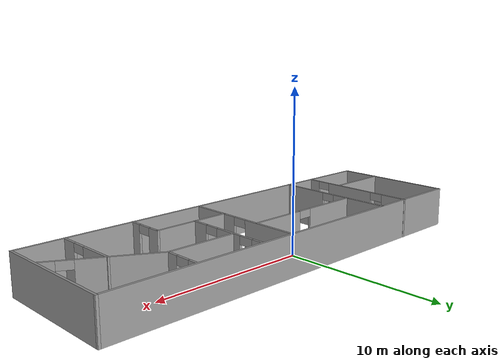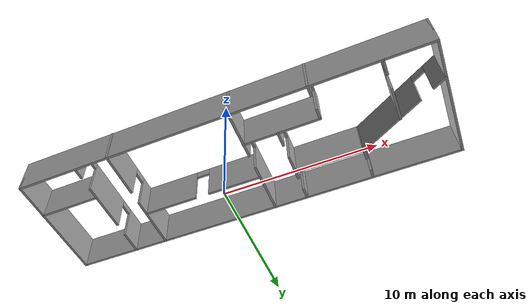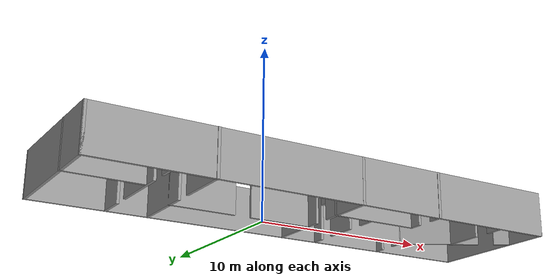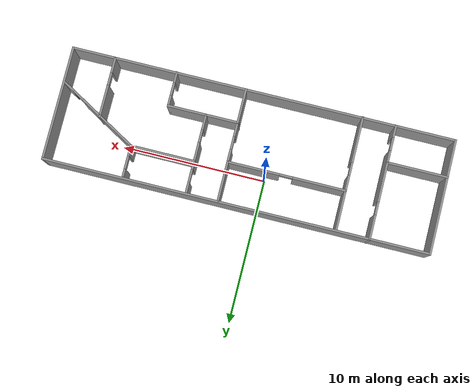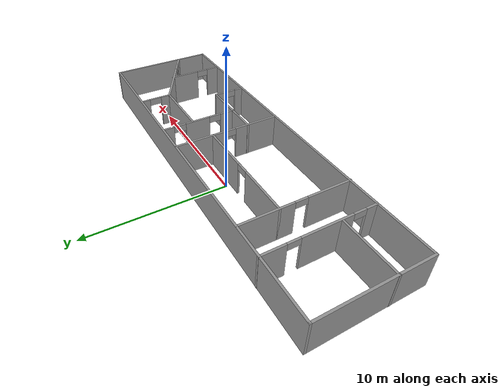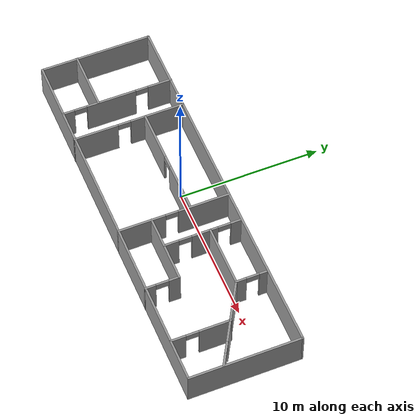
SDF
<?xml version='1.0'?>
<sdf version='1.6'>
  <model name='playground'>
    <pose frame=''>1.41143 -1.55808 0 0 -0 0</pose>
    <link name='Wall_10'>
      <collision name='Wall_10_Collision'>
        <geometry>
          <box>
            <size>26.75 0.15 2.5</size>
          </box>
        </geometry>
        <pose frame=''>0 0 1.25 0 -0 0</pose>
      </collision>
      <visual name='Wall_10_Visual'>
        <pose frame=''>0 0 1.25 0 -0 0</pose>
        <geometry>
          <box>
            <size>26.75 0.15 2.5</size>
          </box>
        </geometry>
        <material>
          <script>
            <uri>file://media/materials/scripts/gazebo.material</uri>
            <name>Gazebo/Grey</name>
          </script>
          <ambient>1 1 1 1</ambient>
        </material>
      </visual>
      <pose frame=''>0.007886 -3.91706 0 0 -0 0</pose>
    </link>
    <link name='Wall_11'>
      <collision name='Wall_11_Collision'>
        <geometry>
          <box>
            <size>8 0.15 2.5</size>
          </box>
        </geometry>
        <pose frame=''>0 0 1.25 0 -0 0</pose>
      </collision>
      <visual name='Wall_11_Visual'>
        <pose frame=''>0 0 1.25 0 -0 0</pose>
        <geometry>
          <box>
            <size>8 0.15 2.5</size>
          </box>
        </geometry>
        <material>
          <script>
            <uri>file://media/materials/scripts/gazebo.material</uri>
            <name>Gazebo/Grey</name>
          </script>
          <ambient>1 1 1 1</ambient>
        </material>
      </visual>
      <pose frame=''>13.3079 0.007941 0 0 -0 1.5708</pose>
    </link>
    <link name='Wall_12'>
      <collision name='Wall_12_Collision'>
        <geometry>
          <box>
            <size>26.75 0.15 2.5</size>
          </box>
        </geometry>
        <pose frame=''>0 0 1.25 0 -0 0</pose>
      </collision>
      <visual name='Wall_12_Visual'>
        <pose frame=''>0 0 1.25 0 -0 0</pose>
        <geometry>
          <box>
            <size>26.75 0.15 2.5</size>
          </box>
        </geometry>
        <material>
          <script>
            <uri>file://media/materials/scripts/gazebo.material</uri>
            <name>Gazebo/Grey</name>
          </script>
          <ambient>1 1 1 1</ambient>
        </material>
      </visual>
      <pose frame=''>0.007886 3.93294 0 0 -0 3.14159</pose>
    </link>
    <link name='Wall_21'>
      <pose frame=''>-9.18476 0.019386 0 0 0 -1.5708</pose>
      <visual name='Wall_21_Visual_0'>
        <pose frame=''>-3.12221 0 1.25 0 -0 0</pose>
        <geometry>
          <box>
            <size>1.75558 0.15 2.5</size>
          </box>
        </geometry>
        <material>
          <script>
            <uri>file://media/materials/scripts/gazebo.material</uri>
            <name>Gazebo/Grey</name>
          </script>
          <ambient>1 1 1 1</ambient>
        </material>
      </visual>
      <collision name='Wall_21_Collision_0'>
        <geometry>
          <box>
            <size>1.75558 0.15 2.5</size>
          </box>
        </geometry>
        <pose frame=''>-3.12221 0 1.25 0 -0 0</pose>
      </collision>
      <visual name='Wall_21_Visual_1'>
        <pose frame=''>0.438191 0 1.25 0 -0 0</pose>
        <geometry>
          <box>
            <size>3.56521 0.15 2.5</size>
          </box>
        </geometry>
        <material>
          <script>
            <uri>file://media/materials/scripts/gazebo.material</uri>
            <name>Gazebo/Grey</name>
          </script>
          <ambient>1 1 1 1</ambient>
        </material>
      </visual>
      <collision name='Wall_21_Collision_1'>
        <geometry>
          <box>
            <size>3.56521 0.15 2.5</size>
          </box>
        </geometry>
        <pose frame=''>0.438191 0 1.25 0 -0 0</pose>
      </collision>
      <visual name='Wall_21_Visual_2'>
        <pose frame=''>3.5604 0 1.25 0 -0 0</pose>
        <geometry>
          <box>
            <size>0.879203 0.15 2.5</size>
          </box>
        </geometry>
        <material>
          <script>
            <uri>file://media/materials/scripts/gazebo.material</uri>
            <name>Gazebo/Grey</name>
          </script>
          <ambient>1 1 1 1</ambient>
        </material>
      </visual>
      <collision name='Wall_21_Collision_2'>
        <geometry>
          <box>
            <size>0.879203 0.15 2.5</size>
          </box>
        </geometry>
        <pose frame=''>3.5604 0 1.25 0 -0 0</pose>
      </collision>
      <visual name='Wall_21_Visual_3'>
        <pose frame=''>-1.79442 0 2.25 0 -0 0</pose>
        <geometry>
          <box>
            <size>0.9 0.15 0.5</size>
          </box>
        </geometry>
        <material>
          <script>
            <uri>file://media/materials/scripts/gazebo.material</uri>
            <name>Gazebo/Grey</name>
          </script>
          <ambient>1 1 1 1</ambient>
        </material>
      </visual>
      <collision name='Wall_21_Collision_3'>
        <geometry>
          <box>
            <size>0.9 0.15 0.5</size>
          </box>
        </geometry>
        <pose frame=''>-1.79442 0 2.25 0 -0 0</pose>
      </collision>
      <visual name='Wall_21_Visual_4'>
        <pose frame=''>2.6708 0 2.25 0 -0 0</pose>
        <geometry>
          <box>
            <size>0.9 0.15 0.5</size>
          </box>
        </geometry>
        <material>
          <script>
            <uri>file://media/materials/scripts/gazebo.material</uri>
            <name>Gazebo/Grey</name>
          </script>
          <ambient>1 1 1 1</ambient>
        </material>
      </visual>
      <collision name='Wall_21_Collision_4'>
        <geometry>
          <box>
            <size>0.9 0.15 0.5</size>
          </box>
        </geometry>
        <pose frame=''>2.6708 0 2.25 0 -0 0</pose>
      </collision>
    </link>
    <link name='Wall_23'>
      <collision name='Wall_23_Collision'>
        <geometry>
          <box>
            <size>4.25 0.15 2.5</size>
          </box>
        </geometry>
        <pose frame=''>0 0 1.25 0 -0 0</pose>
      </collision>
      <visual name='Wall_23_Visual'>
        <pose frame=''>0 0 1.25 0 -0 0</pose>
        <geometry>
          <box>
            <size>4.25 0.15 2.5</size>
          </box>
        </geometry>
        <material>
          <script>
            <uri>file://media/materials/scripts/gazebo.material</uri>
            <name>Gazebo/Grey</name>
          </script>
          <ambient>1 1 1 1</ambient>
        </material>
      </visual>
      <pose frame=''>-11.2579 -1.35252 0 0 -0 3.14159</pose>
    </link>
    <link name='Wall_25'>
      <pose frame=''>-6.89009 -0.019386 0 0 0 -1.5708</pose>
      <visual name='Wall_25_Visual_0'>
        <pose frame=''>-2.05546 0 1.25 0 -0 0</pose>
        <geometry>
          <box>
            <size>3.88908 0.15 2.5</size>
          </box>
        </geometry>
        <material>
          <script>
            <uri>file://media/materials/scripts/gazebo.material</uri>
            <name>Gazebo/Grey</name>
          </script>
          <ambient>1 1 1 1</ambient>
        </material>
      </visual>
      <collision name='Wall_25_Collision_0'>
        <geometry>
          <box>
            <size>3.88908 0.15 2.5</size>
          </box>
        </geometry>
        <pose frame=''>-2.05546 0 1.25 0 -0 0</pose>
      </collision>
      <visual name='Wall_25_Visual_1'>
        <pose frame=''>2.39454 0 1.25 0 -0 0</pose>
        <geometry>
          <box>
            <size>3.21092 0.15 2.5</size>
          </box>
        </geometry>
        <material>
          <script>
            <uri>file://media/materials/scripts/gazebo.material</uri>
            <name>Gazebo/Grey</name>
          </script>
          <ambient>1 1 1 1</ambient>
        </material>
      </visual>
      <collision name='Wall_25_Collision_1'>
        <geometry>
          <box>
            <size>3.21092 0.15 2.5</size>
          </box>
        </geometry>
        <pose frame=''>2.39454 0 1.25 0 -0 0</pose>
      </collision>
      <visual name='Wall_25_Visual_2'>
        <pose frame=''>0.339077 0 2.25 0 -0 0</pose>
        <geometry>
          <box>
            <size>0.9 0.15 0.5</size>
          </box>
        </geometry>
        <material>
          <script>
            <uri>file://media/materials/scripts/gazebo.material</uri>
            <name>Gazebo/Grey</name>
          </script>
          <ambient>1 1 1 1</ambient>
        </material>
      </visual>
      <collision name='Wall_25_Collision_2'>
        <geometry>
          <box>
            <size>0.9 0.15 0.5</size>
          </box>
        </geometry>
        <pose frame=''>0.339077 0 2.25 0 -0 0</pose>
      </collision>
    </link>
    <link name='Wall_27'>
      <pose frame=''>-2.84009 1.17017 0 0 -0 0</pose>
      <visual name='Wall_27_Visual_0'>
        <pose frame=''>-2.27097 0 1.25 0 -0 0</pose>
        <geometry>
          <box>
            <size>3.70805 0.15 2.5</size>
          </box>
        </geometry>
        <material>
          <script>
            <uri>file://media/materials/scripts/gazebo.material</uri>
            <name>Gazebo/Grey</name>
          </script>
          <ambient>1 1 1 1</ambient>
        </material>
      </visual>
      <collision name='Wall_27_Collision_0'>
        <geometry>
          <box>
            <size>3.70805 0.15 2.5</size>
          </box>
        </geometry>
        <pose frame=''>-2.27097 0 1.25 0 -0 0</pose>
      </collision>
      <visual name='Wall_27_Visual_1'>
        <pose frame=''>2.30403 0 1.25 0 -0 0</pose>
        <geometry>
          <box>
            <size>3.64195 0.15 2.5</size>
          </box>
        </geometry>
        <material>
          <script>
            <uri>file://media/materials/scripts/gazebo.material</uri>
            <name>Gazebo/Grey</name>
          </script>
          <ambient>1 1 1 1</ambient>
        </material>
      </visual>
      <collision name='Wall_27_Collision_1'>
        <geometry>
          <box>
            <size>3.64195 0.15 2.5</size>
          </box>
        </geometry>
        <pose frame=''>2.30403 0 1.25 0 -0 0</pose>
      </collision>
      <visual name='Wall_27_Visual_2'>
        <pose frame=''>0.033055 0 2.25 0 -0 0</pose>
        <geometry>
          <box>
            <size>0.9 0.15 0.5</size>
          </box>
        </geometry>
        <material>
          <script>
            <uri>file://media/materials/scripts/gazebo.material</uri>
            <name>Gazebo/Grey</name>
          </script>
          <ambient>1 1 1 1</ambient>
        </material>
      </visual>
      <collision name='Wall_27_Collision_2'>
        <geometry>
          <box>
            <size>0.9 0.15 0.5</size>
          </box>
        </geometry>
        <pose frame=''>0.033055 0 2.25 0 -0 0</pose>
      </collision>
    </link>
    <link name='Wall_33'>
      <pose frame=''>1.21568 0.006434 0 0 -0 1.5708</pose>
      <visual name='Wall_33_Visual_0'>
        <pose frame=''>-2.30688 0 1.25 0 -0 0</pose>
        <geometry>
          <box>
            <size>3.38624 0.15 2.5</size>
          </box>
        </geometry>
        <material>
          <script>
            <uri>file://media/materials/scripts/gazebo.material</uri>
            <name>Gazebo/Grey</name>
          </script>
          <ambient>1 1 1 1</ambient>
        </material>
      </visual>
      <collision name='Wall_33_Collision_0'>
        <geometry>
          <box>
            <size>3.38624 0.15 2.5</size>
          </box>
        </geometry>
        <pose frame=''>-2.30688 0 1.25 0 -0 0</pose>
      </collision>
      <visual name='Wall_33_Visual_1'>
        <pose frame=''>2.14312 0 1.25 0 -0 0</pose>
        <geometry>
          <box>
            <size>3.71376 0.15 2.5</size>
          </box>
        </geometry>
        <material>
          <script>
            <uri>file://media/materials/scripts/gazebo.material</uri>
            <name>Gazebo/Grey</name>
          </script>
          <ambient>1 1 1 1</ambient>
        </material>
      </visual>
      <collision name='Wall_33_Collision_1'>
        <geometry>
          <box>
            <size>3.71376 0.15 2.5</size>
          </box>
        </geometry>
        <pose frame=''>2.14312 0 1.25 0 -0 0</pose>
      </collision>
      <visual name='Wall_33_Visual_2'>
        <pose frame=''>-0.163762 0 2.25 0 -0 0</pose>
        <geometry>
          <box>
            <size>0.9 0.15 0.5</size>
          </box>
        </geometry>
        <material>
          <script>
            <uri>file://media/materials/scripts/gazebo.material</uri>
            <name>Gazebo/Grey</name>
          </script>
          <ambient>1 1 1 1</ambient>
        </material>
      </visual>
      <collision name='Wall_33_Collision_2'>
        <geometry>
          <box>
            <size>0.9 0.15 0.5</size>
          </box>
        </geometry>
        <pose frame=''>-0.163762 0 2.25 0 -0 0</pose>
      </collision>
    </link>
    <link name='Wall_35'>
      <collision name='Wall_35_Collision'>
        <geometry>
          <box>
            <size>5 0.15 2.5</size>
          </box>
        </geometry>
        <pose frame=''>0 0 1.25 0 -0 0</pose>
      </collision>
      <visual name='Wall_35_Visual'>
        <pose frame=''>0 0 1.25 0 -0 0</pose>
        <geometry>
          <box>
            <size>5 0.15 2.5</size>
          </box>
        </geometry>
        <material>
          <script>
            <uri>file://media/materials/scripts/gazebo.material</uri>
            <name>Gazebo/Grey</name>
          </script>
          <ambient>1 1 1 1</ambient>
        </material>
      </visual>
      <pose frame=''>3.62057 -1.58539 0 0 -0 0</pose>
    </link>
    <link name='Wall_36'>
      <pose frame=''>6.04557 -2.76039 0 0 0 -1.5708</pose>
      <visual name='Wall_36_Visual_0'>
        <pose frame=''>-0.84415 0 1.25 0 -0 0</pose>
        <geometry>
          <box>
            <size>0.811701 0.15 2.5</size>
          </box>
        </geometry>
        <material>
          <script>
            <uri>file://media/materials/scripts/gazebo.material</uri>
            <name>Gazebo/Grey</name>
          </script>
          <ambient>1 1 1 1</ambient>
        </material>
      </visual>
      <collision name='Wall_36_Collision_0'>
        <geometry>
          <box>
            <size>0.811701 0.15 2.5</size>
          </box>
        </geometry>
        <pose frame=''>-0.84415 0 1.25 0 -0 0</pose>
      </collision>
      <visual name='Wall_36_Visual_1'>
        <pose frame=''>0.85585 0 1.25 0 -0 0</pose>
        <geometry>
          <box>
            <size>0.788299 0.15 2.5</size>
          </box>
        </geometry>
        <material>
          <script>
            <uri>file://media/materials/scripts/gazebo.material</uri>
            <name>Gazebo/Grey</name>
          </script>
          <ambient>1 1 1 1</ambient>
        </material>
      </visual>
      <collision name='Wall_36_Collision_1'>
        <geometry>
          <box>
            <size>0.788299 0.15 2.5</size>
          </box>
        </geometry>
        <pose frame=''>0.85585 0 1.25 0 -0 0</pose>
      </collision>
      <visual name='Wall_36_Visual_2'>
        <pose frame=''>0.011701 0 2.25 0 -0 0</pose>
        <geometry>
          <box>
            <size>0.9 0.15 0.5</size>
          </box>
        </geometry>
        <material>
          <script>
            <uri>file://media/materials/scripts/gazebo.material</uri>
            <name>Gazebo/Grey</name>
          </script>
          <ambient>1 1 1 1</ambient>
        </material>
      </visual>
      <collision name='Wall_36_Collision_2'>
        <geometry>
          <box>
            <size>0.9 0.15 0.5</size>
          </box>
        </geometry>
        <pose frame=''>0.011701 0 2.25 0 -0 0</pose>
      </collision>
    </link>
    <link name='Wall_38'>
      <pose frame=''>3.40806 1.10972 0 0 -0 1.5708</pose>
      <visual name='Wall_38_Visual_0'>
        <pose frame=''>-2.20336 0 1.25 0 -0 0</pose>
        <geometry>
          <box>
            <size>1.09329 0.15 2.5</size>
          </box>
        </geometry>
        <material>
          <script>
            <uri>file://media/materials/scripts/gazebo.material</uri>
            <name>Gazebo/Grey</name>
          </script>
          <ambient>1 1 1 1</ambient>
        </material>
      </visual>
      <collision name='Wall_38_Collision_0'>
        <geometry>
          <box>
            <size>1.09329 0.15 2.5</size>
          </box>
        </geometry>
        <pose frame=''>-2.20336 0 1.25 0 -0 0</pose>
      </collision>
      <visual name='Wall_38_Visual_1'>
        <pose frame=''>0.181127 0 1.25 0 -0 0</pose>
        <geometry>
          <box>
            <size>1.87567 0.15 2.5</size>
          </box>
        </geometry>
        <material>
          <script>
            <uri>file://media/materials/scripts/gazebo.material</uri>
            <name>Gazebo/Grey</name>
          </script>
          <ambient>1 1 1 1</ambient>
        </material>
      </visual>
      <collision name='Wall_38_Collision_1'>
        <geometry>
          <box>
            <size>1.87567 0.15 2.5</size>
          </box>
        </geometry>
        <pose frame=''>0.181127 0 1.25 0 -0 0</pose>
      </collision>
      <visual name='Wall_38_Visual_2'>
        <pose frame=''>2.38448 0 1.25 0 -0 0</pose>
        <geometry>
          <box>
            <size>0.731036 0.15 2.5</size>
          </box>
        </geometry>
        <material>
          <script>
            <uri>file://media/materials/scripts/gazebo.material</uri>
            <name>Gazebo/Grey</name>
          </script>
          <ambient>1 1 1 1</ambient>
        </material>
      </visual>
      <collision name='Wall_38_Collision_2'>
        <geometry>
          <box>
            <size>0.731036 0.15 2.5</size>
          </box>
        </geometry>
        <pose frame=''>2.38448 0 1.25 0 -0 0</pose>
      </collision>
      <visual name='Wall_38_Visual_3'>
        <pose frame=''>-1.20671 0 2.25 0 -0 0</pose>
        <geometry>
          <box>
            <size>0.9 0.15 0.5</size>
          </box>
        </geometry>
        <material>
          <script>
            <uri>file://media/materials/scripts/gazebo.material</uri>
            <name>Gazebo/Grey</name>
          </script>
          <ambient>1 1 1 1</ambient>
        </material>
      </visual>
      <collision name='Wall_38_Collision_3'>
        <geometry>
          <box>
            <size>0.9 0.15 0.5</size>
          </box>
        </geometry>
        <pose frame=''>-1.20671 0 2.25 0 -0 0</pose>
      </collision>
      <visual name='Wall_38_Visual_4'>
        <pose frame=''>1.56896 0 2.25 0 -0 0</pose>
        <geometry>
          <box>
            <size>0.9 0.15 0.5</size>
          </box>
        </geometry>
        <material>
          <script>
            <uri>file://media/materials/scripts/gazebo.material</uri>
            <name>Gazebo/Grey</name>
          </script>
          <ambient>1 1 1 1</ambient>
        </material>
      </visual>
      <collision name='Wall_38_Collision_4'>
        <geometry>
          <box>
            <size>0.9 0.15 0.5</size>
          </box>
        </geometry>
        <pose frame=''>1.56896 0 2.25 0 -0 0</pose>
      </collision>
    </link>
    <link name='Wall_40'>
      <collision name='Wall_40_Collision'>
        <geometry>
          <box>
            <size>4.5 0.15 2.5</size>
          </box>
        </geometry>
        <pose frame=''>0 0 1.25 0 -0 0</pose>
      </collision>
      <visual name='Wall_40_Visual'>
        <pose frame=''>0 0 1.25 0 -0 0</pose>
        <geometry>
          <box>
            <size>4.5 0.15 2.5</size>
          </box>
        </geometry>
        <material>
          <script>
            <uri>file://media/materials/scripts/gazebo.material</uri>
            <name>Gazebo/Grey</name>
          </script>
          <ambient>1 1 1 1</ambient>
        </material>
      </visual>
      <pose frame=''>5.60318 1.67301 0 0 -0 0</pose>
    </link>
    <link name='Wall_41'>
      <pose frame=''>7.77818 2.72301 0 0 -0 1.5708</pose>
      <visual name='Wall_41_Visual_0'>
        <pose frame=''>-0.729206 0 1.25 0 -0 0</pose>
        <geometry>
          <box>
            <size>0.791587 0.15 2.5</size>
          </box>
        </geometry>
        <material>
          <script>
            <uri>file://media/materials/scripts/gazebo.material</uri>
            <name>Gazebo/Grey</name>
          </script>
          <ambient>1 1 1 1</ambient>
        </material>
      </visual>
      <collision name='Wall_41_Collision_0'>
        <geometry>
          <box>
            <size>0.791587 0.15 2.5</size>
          </box>
        </geometry>
        <pose frame=''>-0.729206 0 1.25 0 -0 0</pose>
      </collision>
      <visual name='Wall_41_Visual_1'>
        <pose frame=''>0.845794 0 1.25 0 -0 0</pose>
        <geometry>
          <box>
            <size>0.558413 0.15 2.5</size>
          </box>
        </geometry>
        <material>
          <script>
            <uri>file://media/materials/scripts/gazebo.material</uri>
            <name>Gazebo/Grey</name>
          </script>
          <ambient>1 1 1 1</ambient>
        </material>
      </visual>
      <collision name='Wall_41_Collision_1'>
        <geometry>
          <box>
            <size>0.558413 0.15 2.5</size>
          </box>
        </geometry>
        <pose frame=''>0.845794 0 1.25 0 -0 0</pose>
      </collision>
      <visual name='Wall_41_Visual_2'>
        <pose frame=''>0.116587 0 2.25 0 -0 0</pose>
        <geometry>
          <box>
            <size>0.9 0.15 0.5</size>
          </box>
        </geometry>
        <material>
          <script>
            <uri>file://media/materials/scripts/gazebo.material</uri>
            <name>Gazebo/Grey</name>
          </script>
          <ambient>1 1 1 1</ambient>
        </material>
      </visual>
      <collision name='Wall_41_Collision_2'>
        <geometry>
          <box>
            <size>0.9 0.15 0.5</size>
          </box>
        </geometry>
        <pose frame=''>0.116587 0 2.25 0 -0 0</pose>
      </collision>
    </link>
    <link name='Wall_43'>
      <pose frame=''>10.5278 0.085507 0 0 0 -0.523599</pose>
      <visual name='Wall_43_Visual_0'>
        <pose frame=''>-0.945166 0 1.25 0 -0 0</pose>
        <geometry>
          <box>
            <size>4.60967 0.15 2.5</size>
          </box>
        </geometry>
        <material>
          <script>
            <uri>file://media/materials/scripts/gazebo.material</uri>
            <name>Gazebo/Grey</name>
          </script>
          <ambient>1 1 1 1</ambient>
        </material>
      </visual>
      <collision name='Wall_43_Collision_0'>
        <geometry>
          <box>
            <size>4.60967 0.15 2.5</size>
          </box>
        </geometry>
        <pose frame=''>-0.945166 0 1.25 0 -0 0</pose>
      </collision>
      <visual name='Wall_43_Visual_1'>
        <pose frame=''>2.75483 0 1.25 0 -0 0</pose>
        <geometry>
          <box>
            <size>0.990333 0.15 2.5</size>
          </box>
        </geometry>
        <material>
          <script>
            <uri>file://media/materials/scripts/gazebo.material</uri>
            <name>Gazebo/Grey</name>
          </script>
          <ambient>1 1 1 1</ambient>
        </material>
      </visual>
      <collision name='Wall_43_Collision_1'>
        <geometry>
          <box>
            <size>0.990333 0.15 2.5</size>
          </box>
        </geometry>
        <pose frame=''>2.75483 0 1.25 0 -0 0</pose>
      </collision>
      <visual name='Wall_43_Visual_2'>
        <pose frame=''>1.80967 0 2.25 0 -0 0</pose>
        <geometry>
          <box>
            <size>0.9 0.15 0.5</size>
          </box>
        </geometry>
        <material>
          <script>
            <uri>file://media/materials/scripts/gazebo.material</uri>
            <name>Gazebo/Grey</name>
          </script>
          <ambient>1 1 1 1</ambient>
        </material>
      </visual>
      <collision name='Wall_43_Collision_2'>
        <geometry>
          <box>
            <size>0.9 0.15 0.5</size>
          </box>
        </geometry>
        <pose frame=''>1.80967 0 2.25 0 -0 0</pose>
      </collision>
    </link>
    <link name='Wall_45'>
      <pose frame=''>10.3472 -1.82517 0 0 0 -1.5708</pose>
      <visual name='Wall_45_Visual_0'>
        <pose frame=''>-0.985004 0 1.25 0 -0 0</pose>
        <geometry>
          <box>
            <size>2.27999 0.15 2.5</size>
          </box>
        </geometry>
        <material>
          <script>
            <uri>file://media/materials/scripts/gazebo.material</uri>
            <name>Gazebo/Grey</name>
          </script>
          <ambient>1 1 1 1</ambient>
        </material>
      </visual>
      <collision name='Wall_45_Collision_0'>
        <geometry>
          <box>
            <size>2.27999 0.15 2.5</size>
          </box>
        </geometry>
        <pose frame=''>-0.985004 0 1.25 0 -0 0</pose>
      </collision>
      <visual name='Wall_45_Visual_1'>
        <pose frame=''>1.59 0 1.25 0 -0 0</pose>
        <geometry>
          <box>
            <size>1.07001 0.15 2.5</size>
          </box>
        </geometry>
        <material>
          <script>
            <uri>file://media/materials/scripts/gazebo.material</uri>
            <name>Gazebo/Grey</name>
          </script>
          <ambient>1 1 1 1</ambient>
        </material>
      </visual>
      <collision name='Wall_45_Collision_1'>
        <geometry>
          <box>
            <size>1.07001 0.15 2.5</size>
          </box>
        </geometry>
        <pose frame=''>1.59 0 1.25 0 -0 0</pose>
      </collision>
      <visual name='Wall_45_Visual_2'>
        <pose frame=''>0.604992 0 2.25 0 -0 0</pose>
        <geometry>
          <box>
            <size>0.9 0.15 0.5</size>
          </box>
        </geometry>
        <material>
          <script>
            <uri>file://media/materials/scripts/gazebo.material</uri>
            <name>Gazebo/Grey</name>
          </script>
          <ambient>1 1 1 1</ambient>
        </material>
      </visual>
      <collision name='Wall_45_Collision_2'>
        <geometry>
          <box>
            <size>0.9 0.15 0.5</size>
          </box>
        </geometry>
        <pose frame=''>0.604992 0 2.25 0 -0 0</pose>
      </collision>
    </link>
    <link name='Wall_9'>
      <collision name='Wall_9_Collision'>
        <geometry>
          <box>
            <size>8 0.15 2.5</size>
          </box>
        </geometry>
        <pose frame=''>0 0 1.25 0 -0 0</pose>
      </collision>
      <visual name='Wall_9_Visual'>
        <pose frame=''>0 0 1.25 0 -0 0</pose>
        <geometry>
          <box>
            <size>8 0.15 2.5</size>
          </box>
        </geometry>
        <material>
          <script>
            <uri>file://media/materials/scripts/gazebo.material</uri>
            <name>Gazebo/Grey</name>
          </script>
          <ambient>1 1 1 1</ambient>
        </material>
      </visual>
      <pose frame=''>-13.2921 0.007941 0 0 0 -1.5708</pose>
    </link>
    <static>1</static>
  </model>
</sdf>
